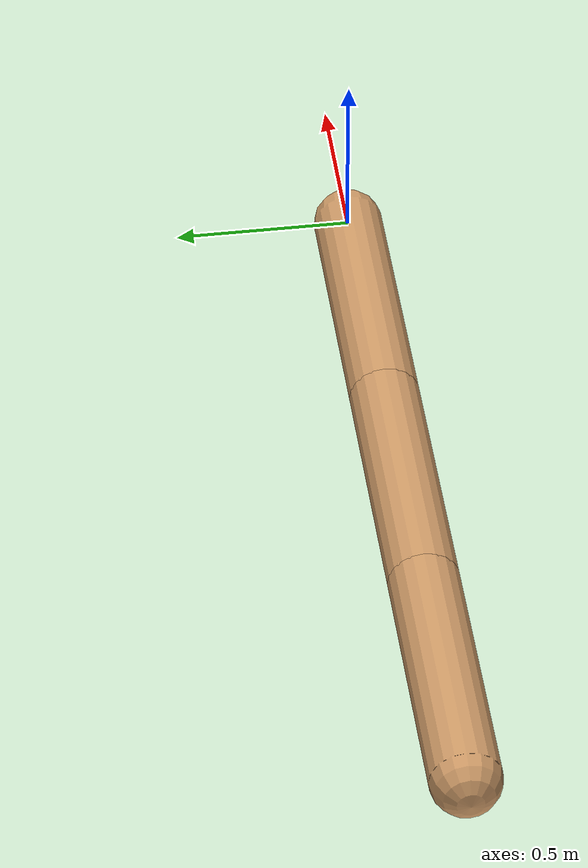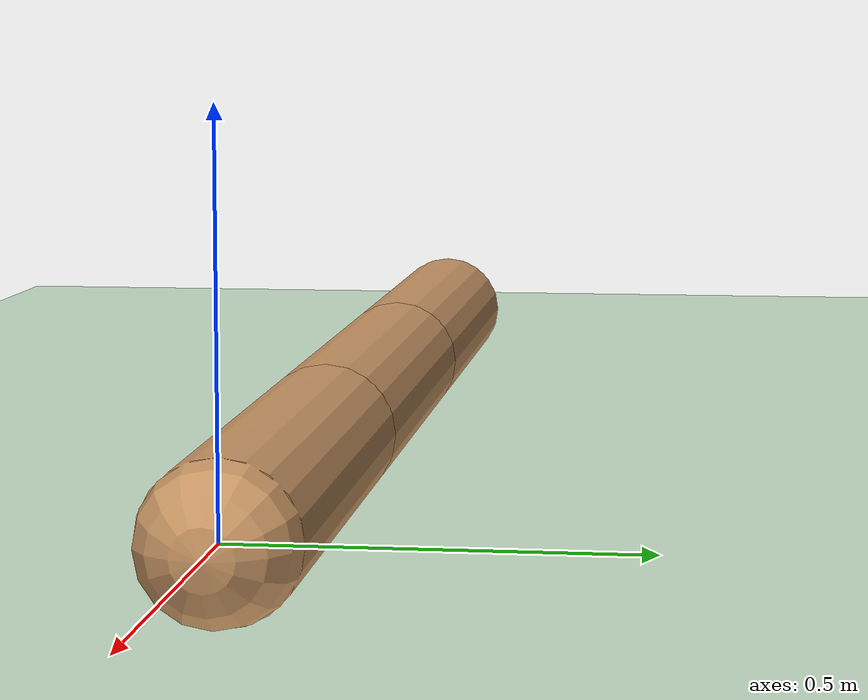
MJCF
<mujoco model="swimmer">
  <compiler angle="degree" coordinate="local" inertiafromgeom="true" />
  <option collision="predefined" density="4000" integrator="RK4" timestep="0.02" viscosity="0.1" />
  <default>
    <geom conaffinity="1" condim="1" contype="1" material="geom" rgba="0.8 0.6 .4 1" />
    <joint armature="0.1" />
  </default>
  <asset>
    <texture type="skybox" builtin="gradient" width="100" height="100" rgb1="1 1 1" rgb2="0 0 0" />
    <texture name="texgeom" type="cube" builtin="flat" mark="cross" width="127" height="1278" rgb1="0.8 0.6 0.4" rgb2="0.8 0.6 0.4" markrgb="1 1 1" random="0.01" />
    <texture name="texplane" type="2d" builtin="checker" rgb1="0.2 0.3 0.4" rgb2="0.1 0.2 0.3" width="100" height="100" />
    <material name='MatPlane' texture="texplane" shininess="1" texrepeat="60 60" specular="1"  reflectance="0.5" />
    <material name='geom' texture="texgeom" texuniform="true" />
  </asset>
  <worldbody>
    <light cutoff="100" diffuse="1 1 1" dir="-0 0 -1.3" directional="true" exponent="1" pos="0 0s 1.3" specular=".1 .1 .1" />
    <geom conaffinity="1" condim="3" material="MatPlane" name="floor" pos="0 0 -0.1" rgba="0.8 0.9 0.8 1" size="40 40 0.1" type="plane" />
    <!--  ================= SWIMMER ================= /-->
    <body name="torso" pos="0 0 0">
      <geom name="frontbody" density="1000" fromto="0 0 0 -0.75 0 0" size="0.1" type="capsule" />
      <joint axis="1 0 0" name="slider1" pos="0 0 0" type="slide" />
      <joint axis="0 1 0" name="slider2" pos="0 0 0" type="slide" />
      <joint axis="0 0 1" name="rot" pos="0 0 0" type="hinge" />
      <body name="mid" pos="-0.75 0 0">
        <geom name="midbody" density="1000" fromto="0 0 0 -0.75 0 0" size="0.1" type="capsule" />
        <joint axis="0 0 1" limited="true" name="rot2" pos="0 0 0" range="-100 100" type="hinge" />
        <body name="back" pos="-0.75 0 0">
          <geom name="backbody" density="1000" fromto="0 0 0 -0.75 0 0" size="0.1" type="capsule" />
          <joint axis="0 0 1" limited="true" name="rot3" pos="0 0 0" range="-100 100" type="hinge" />
        </body>
      </body>
    </body>
  </worldbody>
  <actuator>
    <motor ctrllimited="true" ctrlrange="-1 1" gear="150.0" joint="rot2" />
    <motor ctrllimited="true" ctrlrange="-1 1" gear="150.0" joint="rot3" />
  </actuator>
</mujoco>
